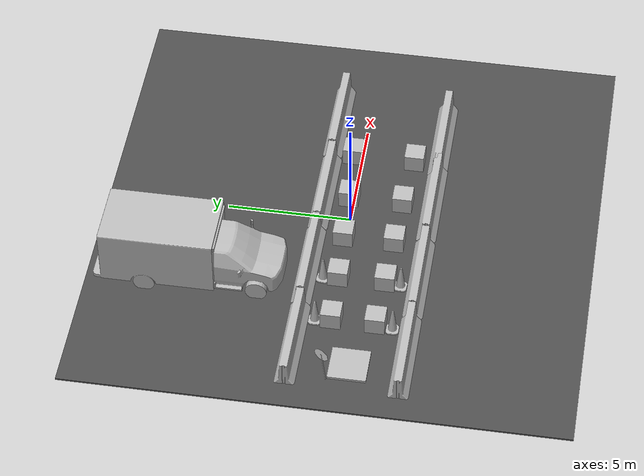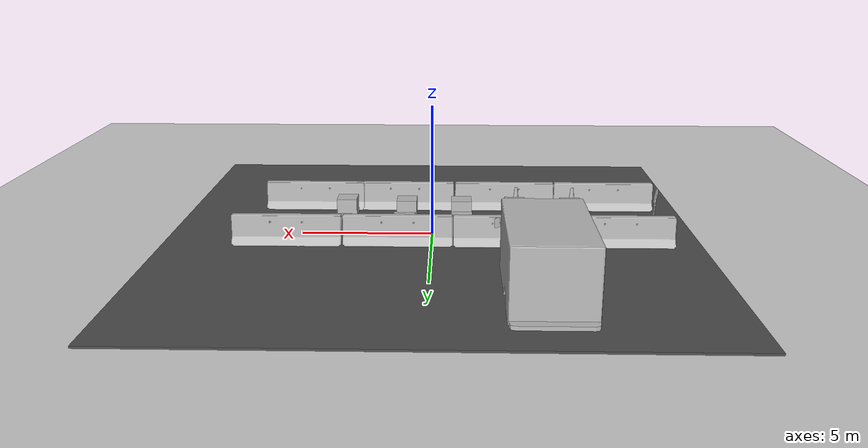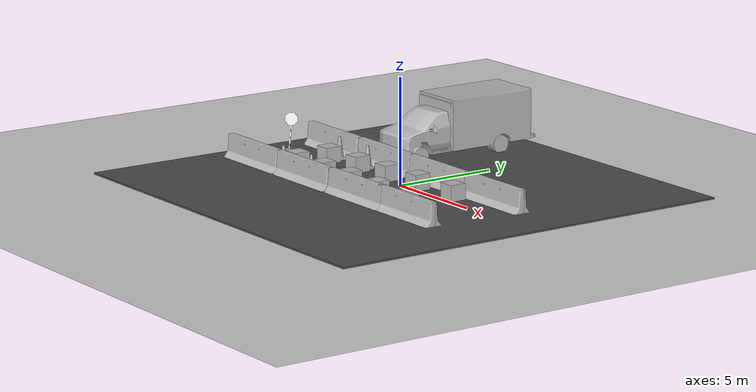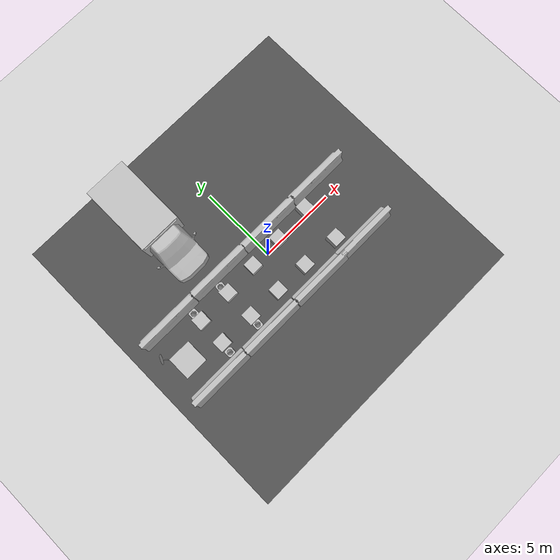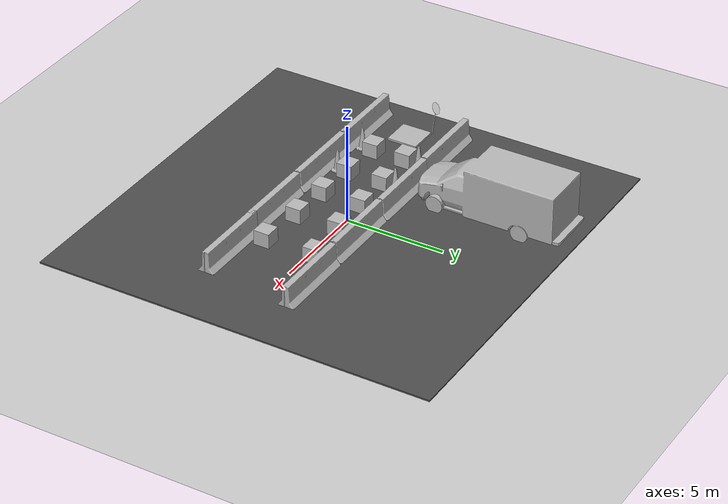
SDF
<sdf version="1.6">
 <world name="default">
  <light name="sun" type="directional">
   <pose>0 0 10 0 -0 0</pose>
   <diffuse>0.8 0.8 0.8 1</diffuse>
   <specular>0.2 0.2 0.2 1</specular>
   <attenuation>
    <range>1000</range>
    <constant>0.9</constant>
    <linear>0.01</linear>
    <quadratic>0.001</quadratic>
   </attenuation>
   <direction>-0.5 0.1 -0.9</direction>
  </light>
  <model name="ground_plane">
   <static>1</static>
   <link name="link">
    <collision name="collision">
     <geometry><plane><normal>0 0 1</normal><size>100 100</size></plane></geometry>
     <surface>
      <contact><collide_bitmask>65535</collide_bitmask></contact>
      <friction><ode><mu>100</mu><mu2>50</mu2></ode></friction>
     </surface>
    </collision>
    <visual name="visual">
     <cast_shadows>0</cast_shadows>
     <geometry><plane><normal>0 0 1</normal><size>100 100</size></plane></geometry>
     <material>
      <script><uri>file://media/materials/scripts/gazebo.material</uri><name>Gazebo/Grey</name></script>
     </material>
    </visual>
   </link>
  </model>
  <gravity>0 0 -9.8</gravity>
  <magnetic_field>6e-06 2.3e-05 -4.2e-05</magnetic_field>
  <atmosphere type="adiabatic"/>
  <physics name="default_physics" default="0" type="ode">
   <max_step_size>0.001</max_step_size>
   <real_time_factor>1</real_time_factor>
   <real_time_update_rate>1000</real_time_update_rate>
  </physics>
  <scene><ambient>0.4 0.4 0.4 1</ambient><background>0.7 0.7 0.7 1</background><shadows>1</shadows></scene>
  <audio><device>default</device></audio>
  <spherical_coordinates>
   <surface_model>EARTH_WGS84</surface_model>
   <latitude_deg>0</latitude_deg>
   <longitude_deg>0</longitude_deg>
   <elevation>0</elevation>
   <heading_deg>0</heading_deg>
  </spherical_coordinates>
  <model name="asphalt_plane">
   <static>1</static>
   <link name="link">
    <collision name="collision"><geometry><box><size>20 20 0.1</size></box></geometry></collision>
    <visual name="visual">
     <cast_shadows>0</cast_shadows>
     <geometry><box><size>20 20 0.1</size></box></geometry>
     <material>
      <script>
       <uri>model://asphalt_plane/materials/scripts</uri>
       <uri>model://asphalt_plane/materials/textures</uri>
       <name>vrc/asphalt</name>
      </script>
     </material>
    </visual>
   </link>
   <pose>0.001786 -0.029899 0 0 -0 0</pose>
  </model>
  <model name="jersey_barrier">
   <static>1</static>
   <link name="link">
    <visual name="visual">
     <geometry><mesh><uri>model://jersey_barrier/meshes/jersey_barrier.dae</uri></mesh></geometry>
    </visual>
    <collision name="upright">
     <pose>0 0 0.5715 0 -0 0</pose>
     <geometry><box><size>4.06542 0.3063 1.143</size></box></geometry>
    </collision>
    <collision name="base">
     <pose>0 0 0.032258 0 -0 0</pose>
     <geometry><box><size>4.06542 0.8107 0.064516</size></box></geometry>
    </collision>
    <collision name="base2">
     <pose>0 0 0.1 0 -0 0</pose>
     <geometry><box><size>4.06542 0.65 0.1</size></box></geometry>
    </collision>
    <collision name="base3">
     <pose>0 0 0.2 0 -0 0</pose>
     <geometry><box><size>4.06542 0.5 0.1</size></box></geometry>
    </collision>
    <collision name="left-angle">
     <pose>0 -0.224 0.2401 0.9 -0 0</pose>
     <geometry><box><size>4.06542 0.5 0.064516</size></box></geometry>
    </collision>
    <collision name="right-angle">
     <pose>0 0.224 0.2401 -0.9 0 0</pose>
     <geometry><box><size>4.06542 0.5 0.064516</size></box></geometry>
    </collision>
   </link>
   <pose>4.91846 -3.18426 0 0 -0 0</pose>
  </model>
  <model name="number5">
   <pose>-5.51831 -1.84792 0.4 0 -0 0</pose>
   <static>1</static>
   <link name="link">
    <visual name="visual">
     <geometry><mesh><uri>model://number1/meshes/number.dae</uri></mesh></geometry>
     <material>
      <script>
       <uri>model://number5/materials/scripts</uri>
       <uri>model://number5/materials/textures</uri>
       <name>Number/Five</name>
      </script>
     </material>
    </visual>
   </link>
  </model>
  <model name="number5_0">
   <pose>-5.51831 -0.096914 0.4 0 -0 0</pose>
   <static>1</static>
   <link name="link">
    <visual name="visual">
     <geometry><mesh><uri>model://number1/meshes/number.dae</uri></mesh></geometry>
     <material>
      <script>
       <uri>model://number5/materials/scripts</uri>
       <uri>model://number5/materials/textures</uri>
       <name>Number/Five</name>
      </script>
     </material>
    </visual>
   </link>
  </model>
  <model name="number4">
   <pose>-3.28775 -1.91991 0.4 0 -0 0</pose>
   <static>1</static>
   <link name="link">
    <visual name="visual">
     <geometry><mesh><uri>model://number1/meshes/number.dae</uri></mesh></geometry>
     <material>
      <script>
       <uri>model://number4/materials/scripts</uri>
       <uri>model://number4/materials/textures</uri>
       <name>Number/Four</name>
      </script>
     </material>
    </visual>
   </link>
  </model>
  <model name="number4_0">
   <pose>-3.29245 -0.036937 0.4 0 -0 0</pose>
   <static>1</static>
   <link name="link">
    <visual name="visual">
     <geometry><mesh><uri>model://number1/meshes/number.dae</uri></mesh></geometry>
     <material>
      <script>
       <uri>model://number4/materials/scripts</uri>
       <uri>model://number4/materials/textures</uri>
       <name>Number/Four</name>
      </script>
     </material>
    </visual>
   </link>
  </model>
  <model name="number3">
   <pose>-1.13277 -1.98264 0.4 0 -0 0</pose>
   <static>1</static>
   <link name="link">
    <visual name="visual">
     <geometry><mesh><uri>model://number1/meshes/number.dae</uri></mesh></geometry>
     <material>
      <script>
       <uri>model://number3/materials/scripts</uri>
       <uri>model://number3/materials/textures</uri>
       <name>Number/Three</name>
      </script>
     </material>
    </visual>
   </link>
  </model>
  <model name="number3_0">
   <pose>-1.13277 0.082219 0.4 0 -0 0</pose>
   <static>1</static>
   <link name="link">
    <visual name="visual">
     <geometry><mesh><uri>model://number1/meshes/number.dae</uri></mesh></geometry>
     <material>
      <script>
       <uri>model://number3/materials/scripts</uri>
       <uri>model://number3/materials/textures</uri>
       <name>Number/Three</name>
      </script>
     </material>
    </visual>
   </link>
  </model>
  <model name="number2">
   <pose>1.05994 -2.0248 0.4 0 -0 0</pose>
   <static>1</static>
   <link name="link">
    <visual name="visual">
     <geometry><mesh><uri>model://number1/meshes/number.dae</uri></mesh></geometry>
     <material>
      <script>
       <uri>model://number2/materials/scripts</uri>
       <uri>model://number2/materials/textures</uri>
       <name>Number/Two</name>
      </script>
     </material>
    </visual>
   </link>
  </model>
  <model name="number2_0">
   <pose>1.05994 0.186548 0.4 0 -0 0</pose>
   <static>1</static>
   <link name="link">
    <visual name="visual">
     <geometry><mesh><uri>model://number1/meshes/number.dae</uri></mesh></geometry>
     <material>
      <script>
       <uri>model://number2/materials/scripts</uri>
       <uri>model://number2/materials/textures</uri>
       <name>Number/Two</name>
      </script>
     </material>
    </visual>
   </link>
  </model>
  <model name="number1">
   <pose>3.48548 -2.19805 0.4 0 -0 0</pose>
   <static>1</static>
   <link name="link">
    <visual name="visual">
     <geometry><mesh><uri>model://number1/meshes/number.dae</uri></mesh></geometry>
     <material>
      <script>
       <uri>model://number1/materials/scripts</uri>
       <uri>model://number1/materials/textures</uri>
       <name>Number/One</name>
      </script>
     </material>
    </visual>
   </link>
  </model>
  <model name="number1_0">
   <pose>3.48548 0.377114 0.4 0 -0 0</pose>
   <static>1</static>
   <link name="link">
    <visual name="visual">
     <geometry><mesh><uri>model://number1/meshes/number.dae</uri></mesh></geometry>
     <material>
      <script>
       <uri>model://number1/materials/scripts</uri>
       <uri>model://number1/materials/textures</uri>
       <name>Number/One</name>
      </script>
     </material>
    </visual>
   </link>
  </model>
  <model name="jersey_barrier_0">
   <static>1</static>
   <link name="link">
    <visual name="visual">
     <geometry><mesh><uri>model://jersey_barrier/meshes/jersey_barrier.dae</uri></mesh></geometry>
    </visual>
    <collision name="upright">
     <pose>0 0 0.5715 0 -0 0</pose>
     <geometry><box><size>4.06542 0.3063 1.143</size></box></geometry>
    </collision>
    <collision name="base">
     <pose>0 0 0.032258 0 -0 0</pose>
     <geometry><box><size>4.06542 0.8107 0.064516</size></box></geometry>
    </collision>
    <collision name="base2">
     <pose>0 0 0.1 0 -0 0</pose>
     <geometry><box><size>4.06542 0.65 0.1</size></box></geometry>
    </collision>
    <collision name="base3">
     <pose>0 0 0.2 0 -0 0</pose>
     <geometry><box><size>4.06542 0.5 0.1</size></box></geometry>
    </collision>
    <collision name="left-angle">
     <pose>0 -0.224 0.2401 0.9 -0 0</pose>
     <geometry><box><size>4.06542 0.5 0.064516</size></box></geometry>
    </collision>
    <collision name="right-angle">
     <pose>0 0.224 0.2401 -0.9 0 0</pose>
     <geometry><box><size>4.06542 0.5 0.064516</size></box></geometry>
    </collision>
   </link>
   <pose>1.20199 -3.20362 0 0 -0 0</pose>
  </model>
  <model name="jersey_barrier_1">
   <static>1</static>
   <link name="link">
    <visual name="visual">
     <geometry><mesh><uri>model://jersey_barrier/meshes/jersey_barrier.dae</uri></mesh></geometry>
    </visual>
    <collision name="upright">
     <pose>0 0 0.5715 0 -0 0</pose>
     <geometry><box><size>4.06542 0.3063 1.143</size></box></geometry>
    </collision>
    <collision name="base">
     <pose>0 0 0.032258 0 -0 0</pose>
     <geometry><box><size>4.06542 0.8107 0.064516</size></box></geometry>
    </collision>
    <collision name="base2">
     <pose>0 0 0.1 0 -0 0</pose>
     <geometry><box><size>4.06542 0.65 0.1</size></box></geometry>
    </collision>
    <collision name="base3">
     <pose>0 0 0.2 0 -0 0</pose>
     <geometry><box><size>4.06542 0.5 0.1</size></box></geometry>
    </collision>
    <collision name="left-angle">
     <pose>0 -0.224 0.2401 0.9 -0 0</pose>
     <geometry><box><size>4.06542 0.5 0.064516</size></box></geometry>
    </collision>
    <collision name="right-angle">
     <pose>0 0.224 0.2401 -0.9 0 0</pose>
     <geometry><box><size>4.06542 0.5 0.064516</size></box></geometry>
    </collision>
   </link>
   <pose>-2.91912 -3.21025 0 0 -0 0</pose>
  </model>
  <model name="jersey_barrier_2">
   <static>1</static>
   <link name="link">
    <visual name="visual">
     <geometry><mesh><uri>model://jersey_barrier/meshes/jersey_barrier.dae</uri></mesh></geometry>
    </visual>
    <collision name="upright">
     <pose>0 0 0.5715 0 -0 0</pose>
     <geometry><box><size>4.06542 0.3063 1.143</size></box></geometry>
    </collision>
    <collision name="base">
     <pose>0 0 0.032258 0 -0 0</pose>
     <geometry><box><size>4.06542 0.8107 0.064516</size></box></geometry>
    </collision>
    <collision name="base2">
     <pose>0 0 0.1 0 -0 0</pose>
     <geometry><box><size>4.06542 0.65 0.1</size></box></geometry>
    </collision>
    <collision name="base3">
     <pose>0 0 0.2 0 -0 0</pose>
     <geometry><box><size>4.06542 0.5 0.1</size></box></geometry>
    </collision>
    <collision name="left-angle">
     <pose>0 -0.224 0.2401 0.9 -0 0</pose>
     <geometry><box><size>4.06542 0.5 0.064516</size></box></geometry>
    </collision>
    <collision name="right-angle">
     <pose>0 0.224 0.2401 -0.9 0 0</pose>
     <geometry><box><size>4.06542 0.5 0.064516</size></box></geometry>
    </collision>
   </link>
   <pose>-7.01538 -3.20081 0 0 -0 0</pose>
  </model>
  <model name="jersey_barrier_3">
   <static>1</static>
   <link name="link">
    <visual name="visual">
     <geometry><mesh><uri>model://jersey_barrier/meshes/jersey_barrier.dae</uri></mesh></geometry>
    </visual>
    <collision name="upright">
     <pose>0 0 0.5715 0 -0 0</pose>
     <geometry><box><size>4.06542 0.3063 1.143</size></box></geometry>
    </collision>
    <collision name="base">
     <pose>0 0 0.032258 0 -0 0</pose>
     <geometry><box><size>4.06542 0.8107 0.064516</size></box></geometry>
    </collision>
    <collision name="base2">
     <pose>0 0 0.1 0 -0 0</pose>
     <geometry><box><size>4.06542 0.65 0.1</size></box></geometry>
    </collision>
    <collision name="base3">
     <pose>0 0 0.2 0 -0 0</pose>
     <geometry><box><size>4.06542 0.5 0.1</size></box></geometry>
    </collision>
    <collision name="left-angle">
     <pose>0 -0.224 0.2401 0.9 -0 0</pose>
     <geometry><box><size>4.06542 0.5 0.064516</size></box></geometry>
    </collision>
    <collision name="right-angle">
     <pose>0 0.224 0.2401 -0.9 0 0</pose>
     <geometry><box><size>4.06542 0.5 0.064516</size></box></geometry>
    </collision>
   </link>
   <pose>5.36135 1.26457 0 0 -0 0</pose>
  </model>
  <model name="jersey_barrier_4">
   <static>1</static>
   <link name="link">
    <visual name="visual">
     <geometry><mesh><uri>model://jersey_barrier/meshes/jersey_barrier.dae</uri></mesh></geometry>
    </visual>
    <collision name="upright">
     <pose>0 0 0.5715 0 -0 0</pose>
     <geometry><box><size>4.06542 0.3063 1.143</size></box></geometry>
    </collision>
    <collision name="base">
     <pose>0 0 0.032258 0 -0 0</pose>
     <geometry><box><size>4.06542 0.8107 0.064516</size></box></geometry>
    </collision>
    <collision name="base2">
     <pose>0 0 0.1 0 -0 0</pose>
     <geometry><box><size>4.06542 0.65 0.1</size></box></geometry>
    </collision>
    <collision name="base3">
     <pose>0 0 0.2 0 -0 0</pose>
     <geometry><box><size>4.06542 0.5 0.1</size></box></geometry>
    </collision>
    <collision name="left-angle">
     <pose>0 -0.224 0.2401 0.9 -0 0</pose>
     <geometry><box><size>4.06542 0.5 0.064516</size></box></geometry>
    </collision>
    <collision name="right-angle">
     <pose>0 0.224 0.2401 -0.9 0 0</pose>
     <geometry><box><size>4.06542 0.5 0.064516</size></box></geometry>
    </collision>
   </link>
   <pose>1.24279 1.23715 0 0 -0 0</pose>
  </model>
  <model name="jersey_barrier_5">
   <static>1</static>
   <link name="link">
    <visual name="visual">
     <geometry><mesh><uri>model://jersey_barrier/meshes/jersey_barrier.dae</uri></mesh></geometry>
    </visual>
    <collision name="upright">
     <pose>0 0 0.5715 0 -0 0</pose>
     <geometry><box><size>4.06542 0.3063 1.143</size></box></geometry>
    </collision>
    <collision name="base">
     <pose>0 0 0.032258 0 -0 0</pose>
     <geometry><box><size>4.06542 0.8107 0.064516</size></box></geometry>
    </collision>
    <collision name="base2">
     <pose>0 0 0.1 0 -0 0</pose>
     <geometry><box><size>4.06542 0.65 0.1</size></box></geometry>
    </collision>
    <collision name="base3">
     <pose>0 0 0.2 0 -0 0</pose>
     <geometry><box><size>4.06542 0.5 0.1</size></box></geometry>
    </collision>
    <collision name="left-angle">
     <pose>0 -0.224 0.2401 0.9 -0 0</pose>
     <geometry><box><size>4.06542 0.5 0.064516</size></box></geometry>
    </collision>
    <collision name="right-angle">
     <pose>0 0.224 0.2401 -0.9 0 0</pose>
     <geometry><box><size>4.06542 0.5 0.064516</size></box></geometry>
    </collision>
   </link>
   <pose>-2.84186 1.2542 0 0 -0 0</pose>
  </model>
  <model name="jersey_barrier_6">
   <static>1</static>
   <link name="link">
    <visual name="visual">
     <geometry><mesh><uri>model://jersey_barrier/meshes/jersey_barrier.dae</uri></mesh></geometry>
    </visual>
    <collision name="upright">
     <pose>0 0 0.5715 0 -0 0</pose>
     <geometry><box><size>4.06542 0.3063 1.143</size></box></geometry>
    </collision>
    <collision name="base">
     <pose>0 0 0.032258 0 -0 0</pose>
     <geometry><box><size>4.06542 0.8107 0.064516</size></box></geometry>
    </collision>
    <collision name="base2">
     <pose>0 0 0.1 0 -0 0</pose>
     <geometry><box><size>4.06542 0.65 0.1</size></box></geometry>
    </collision>
    <collision name="base3">
     <pose>0 0 0.2 0 -0 0</pose>
     <geometry><box><size>4.06542 0.5 0.1</size></box></geometry>
    </collision>
    <collision name="left-angle">
     <pose>0 -0.224 0.2401 0.9 -0 0</pose>
     <geometry><box><size>4.06542 0.5 0.064516</size></box></geometry>
    </collision>
    <collision name="right-angle">
     <pose>0 0.224 0.2401 -0.9 0 0</pose>
     <geometry><box><size>4.06542 0.5 0.064516</size></box></geometry>
    </collision>
   </link>
   <pose>-6.94476 1.22395 0 0 -0 0</pose>
  </model>
  <model name="ambulance">
   <static>1</static>
   <link name="link">
    <collision name="collision">
     <geometry>
      <mesh><scale>0.0254 0.0254 0.0254</scale><uri>model://ambulance/meshes/ambulance.obj</uri></mesh>
     </geometry>
    </collision>
    <visual name="visual">
     <geometry>
      <mesh><scale>0.0254 0.0254 0.0254</scale><uri>model://ambulance/meshes/ambulance.obj</uri></mesh>
     </geometry>
    </visual>
   </link>
   <pose>-3.69256 5.89744 0 0 -0 0</pose>
  </model>
  <model name="Construction Cone">
   <link name="link">
    <collision name="collision">
     <geometry>
      <mesh><scale>10 10 10</scale><uri>model://construction_cone/meshes/construction_cone.dae</uri></mesh>
     </geometry>
    </collision>
    <visual name="visual">
     <geometry>
      <mesh><scale>10 10 10</scale><uri>model://construction_cone/meshes/construction_cone.dae</uri></mesh>
     </geometry>
    </visual>
    <inertial>
     <inertia><ixx>1</ixx><ixy>0</ixy><ixz>0</ixz><iyy>1</iyy><iyz>0</iyz><izz>1</izz></inertia>
     <mass>1</mass>
    </inertial>
   </link>
   <pose>-5.64067 -2.52913 0.05 1e-06 -0 0</pose>
  </model>
  <model name="Construction Cone_0">
   <link name="link">
    <collision name="collision">
     <geometry>
      <mesh><scale>10 10 10</scale><uri>model://construction_cone/meshes/construction_cone.dae</uri></mesh>
     </geometry>
    </collision>
    <visual name="visual">
     <geometry>
      <mesh><scale>10 10 10</scale><uri>model://construction_cone/meshes/construction_cone.dae</uri></mesh>
     </geometry>
    </visual>
    <inertial>
     <inertia><ixx>1</ixx><ixy>0</ixy><ixz>0</ixz><iyy>1</iyy><iyz>0</iyz><izz>1</izz></inertia>
     <mass>1</mass>
    </inertial>
   </link>
   <pose>-5.59407 0.554397 0.05 0 -0 0</pose>
  </model>
  <model name="Construction Cone_1">
   <link name="link">
    <collision name="collision">
     <geometry>
      <mesh><scale>10 10 10</scale><uri>model://construction_cone/meshes/construction_cone.dae</uri></mesh>
     </geometry>
    </collision>
    <visual name="visual">
     <geometry>
      <mesh><scale>10 10 10</scale><uri>model://construction_cone/meshes/construction_cone.dae</uri></mesh>
     </geometry>
    </visual>
    <inertial>
     <inertia><ixx>1</ixx><ixy>0</ixy><ixz>0</ixz><iyy>1</iyy><iyz>0</iyz><izz>1</izz></inertia>
     <mass>1</mass>
    </inertial>
   </link>
   <pose>-3.37566 0.580786 0.05 -0 -0 -0.105763</pose>
  </model>
  <model name="Construction Cone_2">
   <link name="link">
    <collision name="collision">
     <geometry>
      <mesh><scale>10 10 10</scale><uri>model://construction_cone/meshes/construction_cone.dae</uri></mesh>
     </geometry>
    </collision>
    <visual name="visual">
     <geometry>
      <mesh><scale>10 10 10</scale><uri>model://construction_cone/meshes/construction_cone.dae</uri></mesh>
     </geometry>
    </visual>
    <inertial>
     <inertia><ixx>1</ixx><ixy>0</ixy><ixz>0</ixz><iyy>1</iyy><iyz>0</iyz><izz>1</izz></inertia>
     <mass>1</mass>
    </inertial>
   </link>
   <pose>-3.36616 -2.5394 0.05 -0 2e-06 -0.055504</pose>
  </model>
  <model name="lumber_2x6x48">
   <link name="link">
    <inertial>
     <mass>2.22</mass>
     <inertia><ixx>0.0039</ixx><ixy>0</ixy><ixz>0</ixz><iyy>0.28</iyy><iyz>0</iyz><izz>0.2766</izz></inertia>
    </inertial>
    <collision name="collision">
     <geometry><box><size>1.2192 0.038 0.1396</size></box></geometry>
     <surface>
      <bounce><restitution_coefficient>0.01</restitution_coefficient><threshold>5</threshold></bounce>
      <friction><ode><mu>5</mu><mu2>5</mu2></ode></friction>
      <contact><ode><soft_cfm>0.01</soft_cfm><kp>10000</kp><kd>1000</kd><min_depth>0.001</min_depth></ode></contact>
     </surface>
    </collision>
    <visual name="visual">
     <geometry><mesh><uri>model://drc_practice_2x6/meshes/2x6x48.dae</uri></mesh></geometry>
    </visual>
   </link>
   <pose>4.29497 -5.61669 -0.025345 -1.8e-05 -2.4e-05 0</pose>
  </model>
  <model name="lumber_2x6x48_0">
   <link name="link">
    <inertial>
     <mass>2.22</mass>
     <inertia><ixx>0.0039</ixx><ixy>0</ixy><ixz>0</ixz><iyy>0.28</iyy><iyz>0</iyz><izz>0.2766</izz></inertia>
    </inertial>
    <collision name="collision">
     <geometry><box><size>1.2192 0.038 0.1396</size></box></geometry>
     <surface>
      <bounce><restitution_coefficient>0.01</restitution_coefficient><threshold>5</threshold></bounce>
      <friction><ode><mu>5</mu><mu2>5</mu2></ode></friction>
      <contact><ode><soft_cfm>0.01</soft_cfm><kp>10000</kp><kd>1000</kd><min_depth>0.001</min_depth></ode></contact>
     </surface>
    </collision>
    <visual name="visual">
     <geometry><mesh><uri>model://drc_practice_2x6/meshes/2x6x48.dae</uri></mesh></geometry>
    </visual>
   </link>
   <pose>4.96555 -6.61271 -0.025345 -1.8e-05 -2.4e-05 0</pose>
  </model>
  <model name="walkway_metal_90">
   <static>1</static>
   <link name="link">
    <collision name="collision">
     <pose>0 0.762 0.076075 0 -0 0</pose>
     <geometry><box><size>1.524 1.524 0.15215</size></box></geometry>
    </collision>
    <visual name="visual">
     <geometry>
      <mesh><scale>0.001 0.001 0.001</scale><uri>model://walkway_metal_90/meshes/mesh.obj</uri></mesh>
     </geometry>
    </visual>
   </link>
   <pose>-7.67705 -1.88213 0 0 -0 0</pose>
  </model>
  <model name="Stop Sign">
   <static>1</static>
   <link name="link">
    <collision name="collision">
     <geometry><mesh><uri>model://stop_sign/meshes/stop_sign.dae</uri></mesh></geometry>
    </collision>
    <visual name="visual">
     <geometry><mesh><uri>model://stop_sign/meshes/stop_sign.dae</uri></mesh></geometry>
     <material>
      <script>
       <uri>model://stop_sign/materials/scripts</uri>
       <uri>model://stop_sign/materials/textures</uri>
       <name>StopSign/Diffuse</name>
      </script>
     </material>
    </visual>
   </link>
   <pose>-8.48711 -0.328286 0 -0.06822 0.085778 1.10898</pose>
  </model>
  <light name="user_point_light_0" type="point">
   <pose>-8.23409 -1.1154 1 0 -0 0</pose>
   <diffuse>0.5 0.5 0.5 1</diffuse>
   <specular>0.1 0.1 0.1 1</specular>
   <attenuation>
    <range>20</range>
    <constant>0.5</constant>
    <linear>0.01</linear>
    <quadratic>0.001</quadratic>
   </attenuation>
   <cast_shadows>0</cast_shadows>
   <direction>0 0 -1</direction>
  </light>
 </world>
</sdf>
